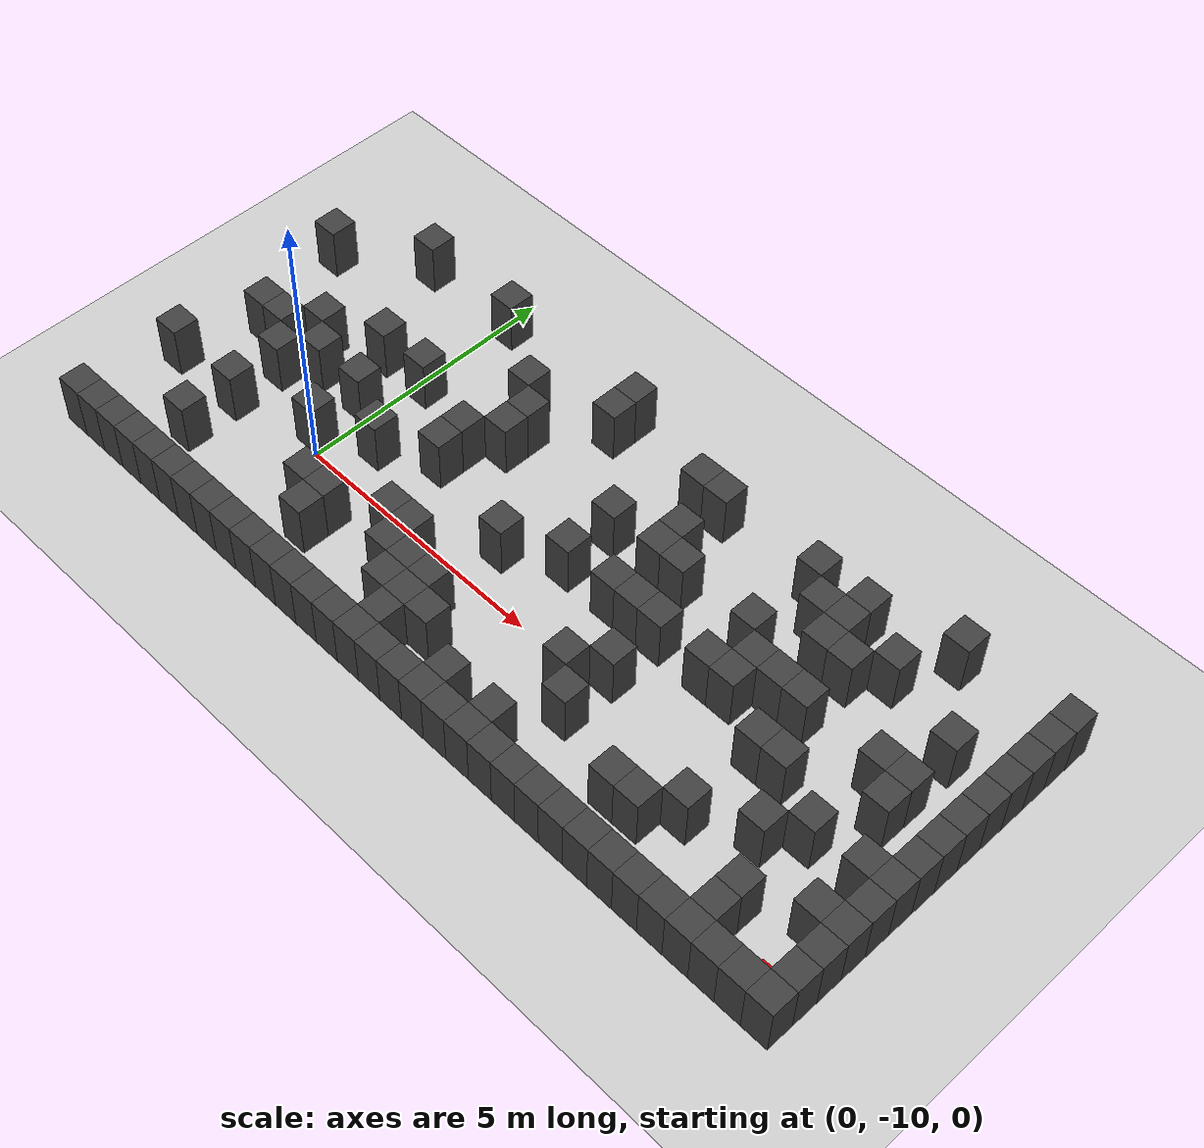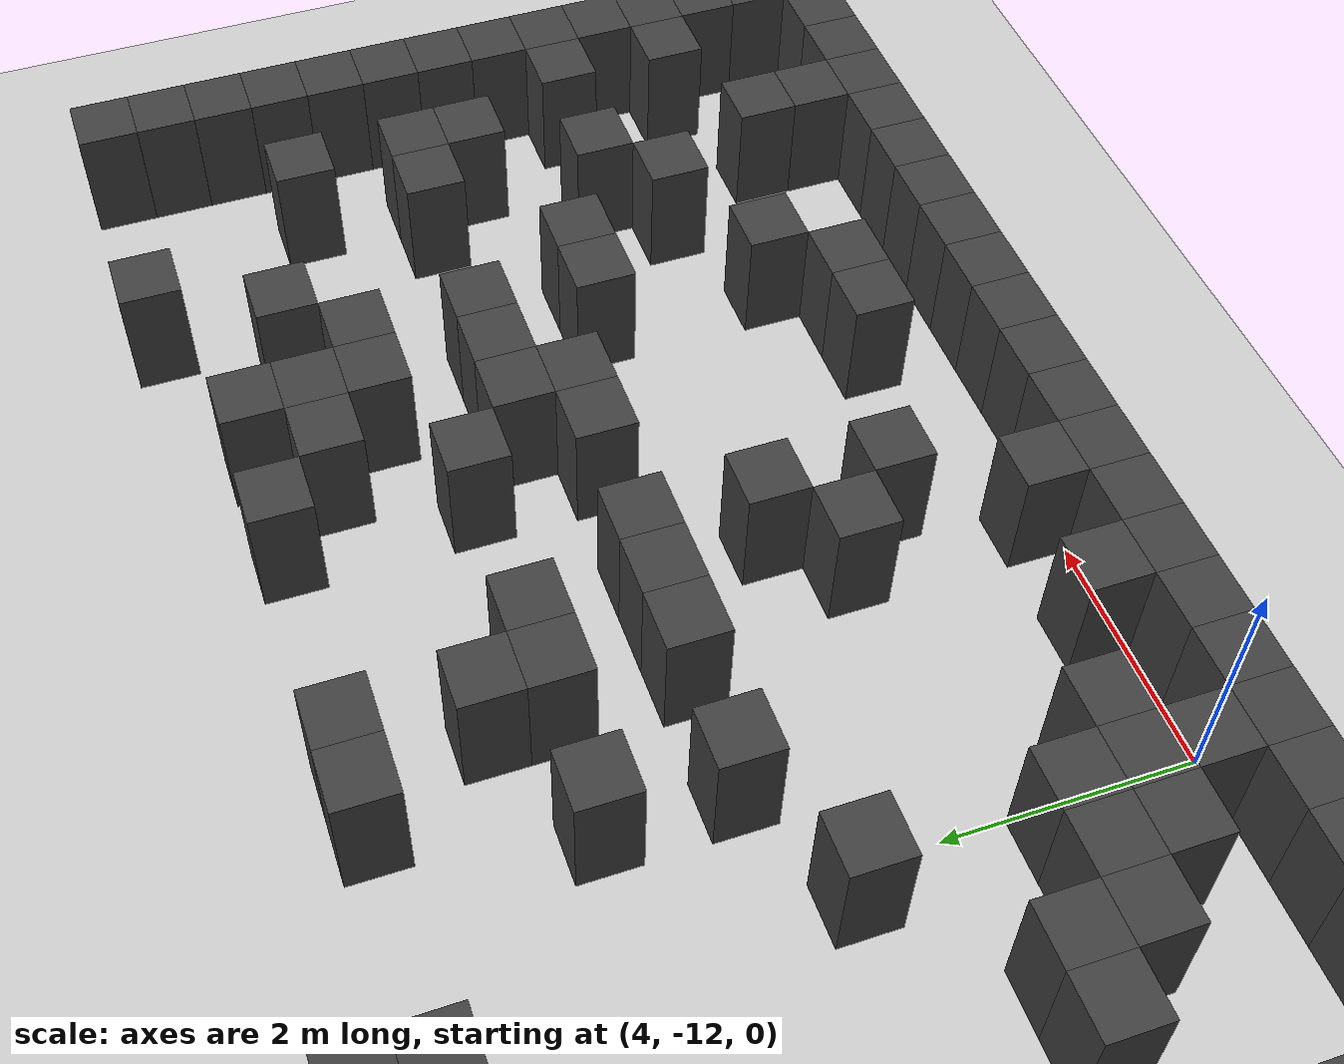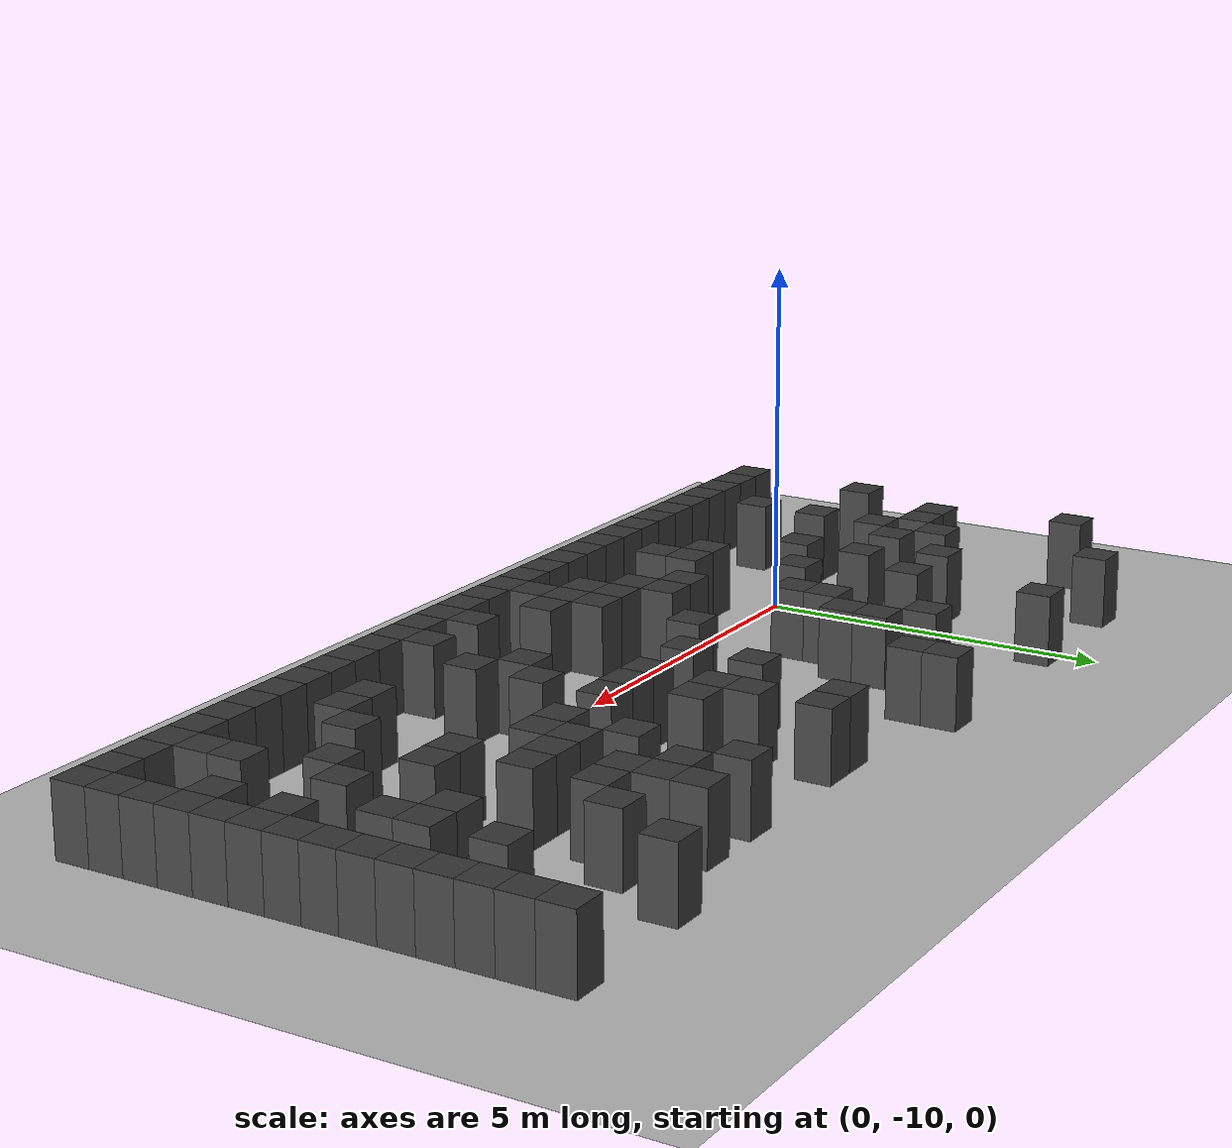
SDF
<sdf version="1.7">
 <world name="map_3891">
  <model name="ground_plane">
   <static>true</static>
   <link name="link">
    <collision name="collision">
     <geometry><plane><normal>0 0 1</normal><size>200 200</size></plane></geometry>
    </collision>
    <visual name="visual">
     <geometry><plane><normal>0 0 1</normal><size>200 200</size></plane></geometry>
     <material><ambient>0.8 0.8 0.8 1</ambient><diffuse>0.8 0.8 0.8 1</diffuse></material>
    </visual>
   </link>
  </model>
  <model name="maze_environment">
   <static>true</static>
   <link name="wall_440">
    <pose>-1.750 -5.750 0.500 0 0 0</pose>
    <collision name="col"><geometry><box><size>0.5 0.5 1.0</size></box></geometry></collision>
    <visual name="vis">
     <geometry><box><size>0.5 0.5 1.0</size></box></geometry>
     <material><ambient>0.15 0.15 0.15 1</ambient><diffuse>0.25 0.25 0.25 1</diffuse></material>
    </visual>
   </link>
   <link name="wall_441">
    <pose>0.250 -5.750 0.500 0 0 0</pose>
    <collision name="col"><geometry><box><size>0.5 0.5 1.0</size></box></geometry></collision>
    <visual name="vis">
     <geometry><box><size>0.5 0.5 1.0</size></box></geometry>
     <material><ambient>0.15 0.15 0.15 1</ambient><diffuse>0.25 0.25 0.25 1</diffuse></material>
    </visual>
   </link>
   <link name="wall_442">
    <pose>3.250 -5.750 0.500 0 0 0</pose>
    <collision name="col"><geometry><box><size>0.5 0.5 1.0</size></box></geometry></collision>
    <visual name="vis">
     <geometry><box><size>0.5 0.5 1.0</size></box></geometry>
     <material><ambient>0.15 0.15 0.15 1</ambient><diffuse>0.25 0.25 0.25 1</diffuse></material>
    </visual>
   </link>
   <link name="wall_443">
    <pose>10.250 -5.750 0.500 0 0 0</pose>
    <collision name="col"><geometry><box><size>0.5 0.5 1.0</size></box></geometry></collision>
    <visual name="vis">
     <geometry><box><size>0.5 0.5 1.0</size></box></geometry>
     <material><ambient>0.15 0.15 0.15 1</ambient><diffuse>0.25 0.25 0.25 1</diffuse></material>
    </visual>
   </link>
   <link name="wall_444">
    <pose>12.250 -5.750 0.500 0 0 0</pose>
    <collision name="col"><geometry><box><size>0.5 0.5 1.0</size></box></geometry></collision>
    <visual name="vis">
     <geometry><box><size>0.5 0.5 1.0</size></box></geometry>
     <material><ambient>0.15 0.15 0.15 1</ambient><diffuse>0.25 0.25 0.25 1</diffuse></material>
    </visual>
   </link>
   <link name="wall_448">
    <pose>3.250 -6.250 0.500 0 0 0</pose>
    <collision name="col"><geometry><box><size>0.5 0.5 1.0</size></box></geometry></collision>
    <visual name="vis">
     <geometry><box><size>0.5 0.5 1.0</size></box></geometry>
     <material><ambient>0.15 0.15 0.15 1</ambient><diffuse>0.25 0.25 0.25 1</diffuse></material>
    </visual>
   </link>
   <link name="wall_449">
    <pose>5.250 -6.250 0.500 0 0 0</pose>
    <collision name="col"><geometry><box><size>0.5 0.5 1.0</size></box></geometry></collision>
    <visual name="vis">
     <geometry><box><size>0.5 0.5 1.0</size></box></geometry>
     <material><ambient>0.15 0.15 0.15 1</ambient><diffuse>0.25 0.25 0.25 1</diffuse></material>
    </visual>
   </link>
   <link name="wall_450">
    <pose>5.750 -6.250 0.500 0 0 0</pose>
    <collision name="col"><geometry><box><size>0.5 0.5 1.0</size></box></geometry></collision>
    <visual name="vis">
     <geometry><box><size>0.5 0.5 1.0</size></box></geometry>
     <material><ambient>0.15 0.15 0.15 1</ambient><diffuse>0.25 0.25 0.25 1</diffuse></material>
    </visual>
   </link>
   <link name="wall_451">
    <pose>7.750 -6.250 0.500 0 0 0</pose>
    <collision name="col"><geometry><box><size>0.5 0.5 1.0</size></box></geometry></collision>
    <visual name="vis">
     <geometry><box><size>0.5 0.5 1.0</size></box></geometry>
     <material><ambient>0.15 0.15 0.15 1</ambient><diffuse>0.25 0.25 0.25 1</diffuse></material>
    </visual>
   </link>
   <link name="wall_452">
    <pose>8.750 -6.250 0.500 0 0 0</pose>
    <collision name="col"><geometry><box><size>0.5 0.5 1.0</size></box></geometry></collision>
    <visual name="vis">
     <geometry><box><size>0.5 0.5 1.0</size></box></geometry>
     <material><ambient>0.15 0.15 0.15 1</ambient><diffuse>0.25 0.25 0.25 1</diffuse></material>
    </visual>
   </link>
   <link name="wall_453">
    <pose>12.250 -6.250 0.500 0 0 0</pose>
    <collision name="col"><geometry><box><size>0.5 0.5 1.0</size></box></geometry></collision>
    <visual name="vis">
     <geometry><box><size>0.5 0.5 1.0</size></box></geometry>
     <material><ambient>0.15 0.15 0.15 1</ambient><diffuse>0.25 0.25 0.25 1</diffuse></material>
    </visual>
   </link>
   <link name="wall_457">
    <pose>-3.250 -6.750 0.500 0 0 0</pose>
    <collision name="col"><geometry><box><size>0.5 0.5 1.0</size></box></geometry></collision>
    <visual name="vis">
     <geometry><box><size>0.5 0.5 1.0</size></box></geometry>
     <material><ambient>0.15 0.15 0.15 1</ambient><diffuse>0.25 0.25 0.25 1</diffuse></material>
    </visual>
   </link>
   <link name="wall_458">
    <pose>1.750 -6.750 0.500 0 0 0</pose>
    <collision name="col"><geometry><box><size>0.5 0.5 1.0</size></box></geometry></collision>
    <visual name="vis">
     <geometry><box><size>0.5 0.5 1.0</size></box></geometry>
     <material><ambient>0.15 0.15 0.15 1</ambient><diffuse>0.25 0.25 0.25 1</diffuse></material>
    </visual>
   </link>
   <link name="wall_459">
    <pose>8.250 -6.750 0.500 0 0 0</pose>
    <collision name="col"><geometry><box><size>0.5 0.5 1.0</size></box></geometry></collision>
    <visual name="vis">
     <geometry><box><size>0.5 0.5 1.0</size></box></geometry>
     <material><ambient>0.15 0.15 0.15 1</ambient><diffuse>0.25 0.25 0.25 1</diffuse></material>
    </visual>
   </link>
   <link name="wall_460">
    <pose>8.750 -6.750 0.500 0 0 0</pose>
    <collision name="col"><geometry><box><size>0.5 0.5 1.0</size></box></geometry></collision>
    <visual name="vis">
     <geometry><box><size>0.5 0.5 1.0</size></box></geometry>
     <material><ambient>0.15 0.15 0.15 1</ambient><diffuse>0.25 0.25 0.25 1</diffuse></material>
    </visual>
   </link>
   <link name="wall_461">
    <pose>9.750 -6.750 0.500 0 0 0</pose>
    <collision name="col"><geometry><box><size>0.5 0.5 1.0</size></box></geometry></collision>
    <visual name="vis">
     <geometry><box><size>0.5 0.5 1.0</size></box></geometry>
     <material><ambient>0.15 0.15 0.15 1</ambient><diffuse>0.25 0.25 0.25 1</diffuse></material>
    </visual>
   </link>
   <link name="wall_462">
    <pose>12.250 -6.750 0.500 0 0 0</pose>
    <collision name="col"><geometry><box><size>0.5 0.5 1.0</size></box></geometry></collision>
    <visual name="vis">
     <geometry><box><size>0.5 0.5 1.0</size></box></geometry>
     <material><ambient>0.15 0.15 0.15 1</ambient><diffuse>0.25 0.25 0.25 1</diffuse></material>
    </visual>
   </link>
   <link name="wall_468">
    <pose>2.250 -7.250 0.500 0 0 0</pose>
    <collision name="col"><geometry><box><size>0.5 0.5 1.0</size></box></geometry></collision>
    <visual name="vis">
     <geometry><box><size>0.5 0.5 1.0</size></box></geometry>
     <material><ambient>0.15 0.15 0.15 1</ambient><diffuse>0.25 0.25 0.25 1</diffuse></material>
    </visual>
   </link>
   <link name="wall_469">
    <pose>5.750 -7.250 0.500 0 0 0</pose>
    <collision name="col"><geometry><box><size>0.5 0.5 1.0</size></box></geometry></collision>
    <visual name="vis">
     <geometry><box><size>0.5 0.5 1.0</size></box></geometry>
     <material><ambient>0.15 0.15 0.15 1</ambient><diffuse>0.25 0.25 0.25 1</diffuse></material>
    </visual>
   </link>
   <link name="wall_470">
    <pose>8.750 -7.250 0.500 0 0 0</pose>
    <collision name="col"><geometry><box><size>0.5 0.5 1.0</size></box></geometry></collision>
    <visual name="vis">
     <geometry><box><size>0.5 0.5 1.0</size></box></geometry>
     <material><ambient>0.15 0.15 0.15 1</ambient><diffuse>0.25 0.25 0.25 1</diffuse></material>
    </visual>
   </link>
   <link name="wall_471">
    <pose>9.250 -7.250 0.500 0 0 0</pose>
    <collision name="col"><geometry><box><size>0.5 0.5 1.0</size></box></geometry></collision>
    <visual name="vis">
     <geometry><box><size>0.5 0.5 1.0</size></box></geometry>
     <material><ambient>0.15 0.15 0.15 1</ambient><diffuse>0.25 0.25 0.25 1</diffuse></material>
    </visual>
   </link>
   <link name="wall_472">
    <pose>11.250 -7.250 0.500 0 0 0</pose>
    <collision name="col"><geometry><box><size>0.5 0.5 1.0</size></box></geometry></collision>
    <visual name="vis">
     <geometry><box><size>0.5 0.5 1.0</size></box></geometry>
     <material><ambient>0.15 0.15 0.15 1</ambient><diffuse>0.25 0.25 0.25 1</diffuse></material>
    </visual>
   </link>
   <link name="wall_473">
    <pose>12.250 -7.250 0.500 0 0 0</pose>
    <collision name="col"><geometry><box><size>0.5 0.5 1.0</size></box></geometry></collision>
    <visual name="vis">
     <geometry><box><size>0.5 0.5 1.0</size></box></geometry>
     <material><ambient>0.15 0.15 0.15 1</ambient><diffuse>0.25 0.25 0.25 1</diffuse></material>
    </visual>
   </link>
   <link name="wall_477">
    <pose>-0.750 -7.750 0.500 0 0 0</pose>
    <collision name="col"><geometry><box><size>0.5 0.5 1.0</size></box></geometry></collision>
    <visual name="vis">
     <geometry><box><size>0.5 0.5 1.0</size></box></geometry>
     <material><ambient>0.15 0.15 0.15 1</ambient><diffuse>0.25 0.25 0.25 1</diffuse></material>
    </visual>
   </link>
   <link name="wall_478">
    <pose>0.250 -7.750 0.500 0 0 0</pose>
    <collision name="col"><geometry><box><size>0.5 0.5 1.0</size></box></geometry></collision>
    <visual name="vis">
     <geometry><box><size>0.5 0.5 1.0</size></box></geometry>
     <material><ambient>0.15 0.15 0.15 1</ambient><diffuse>0.25 0.25 0.25 1</diffuse></material>
    </visual>
   </link>
   <link name="wall_479">
    <pose>2.250 -7.750 0.500 0 0 0</pose>
    <collision name="col"><geometry><box><size>0.5 0.5 1.0</size></box></geometry></collision>
    <visual name="vis">
     <geometry><box><size>0.5 0.5 1.0</size></box></geometry>
     <material><ambient>0.15 0.15 0.15 1</ambient><diffuse>0.25 0.25 0.25 1</diffuse></material>
    </visual>
   </link>
   <link name="wall_480">
    <pose>4.750 -7.750 0.500 0 0 0</pose>
    <collision name="col"><geometry><box><size>0.5 0.5 1.0</size></box></geometry></collision>
    <visual name="vis">
     <geometry><box><size>0.5 0.5 1.0</size></box></geometry>
     <material><ambient>0.15 0.15 0.15 1</ambient><diffuse>0.25 0.25 0.25 1</diffuse></material>
    </visual>
   </link>
   <link name="wall_481">
    <pose>5.750 -7.750 0.500 0 0 0</pose>
    <collision name="col"><geometry><box><size>0.5 0.5 1.0</size></box></geometry></collision>
    <visual name="vis">
     <geometry><box><size>0.5 0.5 1.0</size></box></geometry>
     <material><ambient>0.15 0.15 0.15 1</ambient><diffuse>0.25 0.25 0.25 1</diffuse></material>
    </visual>
   </link>
   <link name="wall_482">
    <pose>6.250 -7.750 0.500 0 0 0</pose>
    <collision name="col"><geometry><box><size>0.5 0.5 1.0</size></box></geometry></collision>
    <visual name="vis">
     <geometry><box><size>0.5 0.5 1.0</size></box></geometry>
     <material><ambient>0.15 0.15 0.15 1</ambient><diffuse>0.25 0.25 0.25 1</diffuse></material>
    </visual>
   </link>
   <link name="wall_483">
    <pose>7.750 -7.750 0.500 0 0 0</pose>
    <collision name="col"><geometry><box><size>0.5 0.5 1.0</size></box></geometry></collision>
    <visual name="vis">
     <geometry><box><size>0.5 0.5 1.0</size></box></geometry>
     <material><ambient>0.15 0.15 0.15 1</ambient><diffuse>0.25 0.25 0.25 1</diffuse></material>
    </visual>
   </link>
   <link name="wall_484">
    <pose>12.250 -7.750 0.500 0 0 0</pose>
    <collision name="col"><geometry><box><size>0.5 0.5 1.0</size></box></geometry></collision>
    <visual name="vis">
     <geometry><box><size>0.5 0.5 1.0</size></box></geometry>
     <material><ambient>0.15 0.15 0.15 1</ambient><diffuse>0.25 0.25 0.25 1</diffuse></material>
    </visual>
   </link>
   <link name="wall_488">
    <pose>-1.750 -8.250 0.500 0 0 0</pose>
    <collision name="col"><geometry><box><size>0.5 0.5 1.0</size></box></geometry></collision>
    <visual name="vis">
     <geometry><box><size>0.5 0.5 1.0</size></box></geometry>
     <material><ambient>0.15 0.15 0.15 1</ambient><diffuse>0.25 0.25 0.25 1</diffuse></material>
    </visual>
   </link>
   <link name="wall_489">
    <pose>1.750 -8.250 0.500 0 0 0</pose>
    <collision name="col"><geometry><box><size>0.5 0.5 1.0</size></box></geometry></collision>
    <visual name="vis">
     <geometry><box><size>0.5 0.5 1.0</size></box></geometry>
     <material><ambient>0.15 0.15 0.15 1</ambient><diffuse>0.25 0.25 0.25 1</diffuse></material>
    </visual>
   </link>
   <link name="wall_490">
    <pose>8.250 -8.250 0.500 0 0 0</pose>
    <collision name="col"><geometry><box><size>0.5 0.5 1.0</size></box></geometry></collision>
    <visual name="vis">
     <geometry><box><size>0.5 0.5 1.0</size></box></geometry>
     <material><ambient>0.15 0.15 0.15 1</ambient><diffuse>0.25 0.25 0.25 1</diffuse></material>
    </visual>
   </link>
   <link name="wall_491">
    <pose>8.750 -8.250 0.500 0 0 0</pose>
    <collision name="col"><geometry><box><size>0.5 0.5 1.0</size></box></geometry></collision>
    <visual name="vis">
     <geometry><box><size>0.5 0.5 1.0</size></box></geometry>
     <material><ambient>0.15 0.15 0.15 1</ambient><diffuse>0.25 0.25 0.25 1</diffuse></material>
    </visual>
   </link>
   <link name="wall_492">
    <pose>9.250 -8.250 0.500 0 0 0</pose>
    <collision name="col"><geometry><box><size>0.5 0.5 1.0</size></box></geometry></collision>
    <visual name="vis">
     <geometry><box><size>0.5 0.5 1.0</size></box></geometry>
     <material><ambient>0.15 0.15 0.15 1</ambient><diffuse>0.25 0.25 0.25 1</diffuse></material>
    </visual>
   </link>
   <link name="wall_493">
    <pose>10.750 -8.250 0.500 0 0 0</pose>
    <collision name="col"><geometry><box><size>0.5 0.5 1.0</size></box></geometry></collision>
    <visual name="vis">
     <geometry><box><size>0.5 0.5 1.0</size></box></geometry>
     <material><ambient>0.15 0.15 0.15 1</ambient><diffuse>0.25 0.25 0.25 1</diffuse></material>
    </visual>
   </link>
   <link name="wall_494">
    <pose>11.250 -8.250 0.500 0 0 0</pose>
    <collision name="col"><geometry><box><size>0.5 0.5 1.0</size></box></geometry></collision>
    <visual name="vis">
     <geometry><box><size>0.5 0.5 1.0</size></box></geometry>
     <material><ambient>0.15 0.15 0.15 1</ambient><diffuse>0.25 0.25 0.25 1</diffuse></material>
    </visual>
   </link>
   <link name="wall_495">
    <pose>12.250 -8.250 0.500 0 0 0</pose>
    <collision name="col"><geometry><box><size>0.5 0.5 1.0</size></box></geometry></collision>
    <visual name="vis">
     <geometry><box><size>0.5 0.5 1.0</size></box></geometry>
     <material><ambient>0.15 0.15 0.15 1</ambient><diffuse>0.25 0.25 0.25 1</diffuse></material>
    </visual>
   </link>
   <link name="wall_502">
    <pose>-2.750 -8.750 0.500 0 0 0</pose>
    <collision name="col"><geometry><box><size>0.5 0.5 1.0</size></box></geometry></collision>
    <visual name="vis">
     <geometry><box><size>0.5 0.5 1.0</size></box></geometry>
     <material><ambient>0.15 0.15 0.15 1</ambient><diffuse>0.25 0.25 0.25 1</diffuse></material>
    </visual>
   </link>
   <link name="wall_503">
    <pose>-2.250 -8.750 0.500 0 0 0</pose>
    <collision name="col"><geometry><box><size>0.5 0.5 1.0</size></box></geometry></collision>
    <visual name="vis">
     <geometry><box><size>0.5 0.5 1.0</size></box></geometry>
     <material><ambient>0.15 0.15 0.15 1</ambient><diffuse>0.25 0.25 0.25 1</diffuse></material>
    </visual>
   </link>
   <link name="wall_504">
    <pose>-1.250 -8.750 0.500 0 0 0</pose>
    <collision name="col"><geometry><box><size>0.5 0.5 1.0</size></box></geometry></collision>
    <visual name="vis">
     <geometry><box><size>0.5 0.5 1.0</size></box></geometry>
     <material><ambient>0.15 0.15 0.15 1</ambient><diffuse>0.25 0.25 0.25 1</diffuse></material>
    </visual>
   </link>
   <link name="wall_505">
    <pose>-0.250 -8.750 0.500 0 0 0</pose>
    <collision name="col"><geometry><box><size>0.5 0.5 1.0</size></box></geometry></collision>
    <visual name="vis">
     <geometry><box><size>0.5 0.5 1.0</size></box></geometry>
     <material><ambient>0.15 0.15 0.15 1</ambient><diffuse>0.25 0.25 0.25 1</diffuse></material>
    </visual>
   </link>
   <link name="wall_506">
    <pose>1.750 -8.750 0.500 0 0 0</pose>
    <collision name="col"><geometry><box><size>0.5 0.5 1.0</size></box></geometry></collision>
    <visual name="vis">
     <geometry><box><size>0.5 0.5 1.0</size></box></geometry>
     <material><ambient>0.15 0.15 0.15 1</ambient><diffuse>0.25 0.25 0.25 1</diffuse></material>
    </visual>
   </link>
   <link name="wall_507">
    <pose>4.750 -8.750 0.500 0 0 0</pose>
    <collision name="col"><geometry><box><size>0.5 0.5 1.0</size></box></geometry></collision>
    <visual name="vis">
     <geometry><box><size>0.5 0.5 1.0</size></box></geometry>
     <material><ambient>0.15 0.15 0.15 1</ambient><diffuse>0.25 0.25 0.25 1</diffuse></material>
    </visual>
   </link>
   <link name="wall_508">
    <pose>5.750 -8.750 0.500 0 0 0</pose>
    <collision name="col"><geometry><box><size>0.5 0.5 1.0</size></box></geometry></collision>
    <visual name="vis">
     <geometry><box><size>0.5 0.5 1.0</size></box></geometry>
     <material><ambient>0.15 0.15 0.15 1</ambient><diffuse>0.25 0.25 0.25 1</diffuse></material>
    </visual>
   </link>
   <link name="wall_509">
    <pose>6.250 -8.750 0.500 0 0 0</pose>
    <collision name="col"><geometry><box><size>0.5 0.5 1.0</size></box></geometry></collision>
    <visual name="vis">
     <geometry><box><size>0.5 0.5 1.0</size></box></geometry>
     <material><ambient>0.15 0.15 0.15 1</ambient><diffuse>0.25 0.25 0.25 1</diffuse></material>
    </visual>
   </link>
   <link name="wall_510">
    <pose>6.750 -8.750 0.500 0 0 0</pose>
    <collision name="col"><geometry><box><size>0.5 0.5 1.0</size></box></geometry></collision>
    <visual name="vis">
     <geometry><box><size>0.5 0.5 1.0</size></box></geometry>
     <material><ambient>0.15 0.15 0.15 1</ambient><diffuse>0.25 0.25 0.25 1</diffuse></material>
    </visual>
   </link>
   <link name="wall_511">
    <pose>7.750 -8.750 0.500 0 0 0</pose>
    <collision name="col"><geometry><box><size>0.5 0.5 1.0</size></box></geometry></collision>
    <visual name="vis">
     <geometry><box><size>0.5 0.5 1.0</size></box></geometry>
     <material><ambient>0.15 0.15 0.15 1</ambient><diffuse>0.25 0.25 0.25 1</diffuse></material>
    </visual>
   </link>
   <link name="wall_512">
    <pose>8.250 -8.750 0.500 0 0 0</pose>
    <collision name="col"><geometry><box><size>0.5 0.5 1.0</size></box></geometry></collision>
    <visual name="vis">
     <geometry><box><size>0.5 0.5 1.0</size></box></geometry>
     <material><ambient>0.15 0.15 0.15 1</ambient><diffuse>0.25 0.25 0.25 1</diffuse></material>
    </visual>
   </link>
   <link name="wall_513">
    <pose>11.250 -8.750 0.500 0 0 0</pose>
    <collision name="col"><geometry><box><size>0.5 0.5 1.0</size></box></geometry></collision>
    <visual name="vis">
     <geometry><box><size>0.5 0.5 1.0</size></box></geometry>
     <material><ambient>0.15 0.15 0.15 1</ambient><diffuse>0.25 0.25 0.25 1</diffuse></material>
    </visual>
   </link>
   <link name="wall_514">
    <pose>12.250 -8.750 0.500 0 0 0</pose>
    <collision name="col"><geometry><box><size>0.5 0.5 1.0</size></box></geometry></collision>
    <visual name="vis">
     <geometry><box><size>0.5 0.5 1.0</size></box></geometry>
     <material><ambient>0.15 0.15 0.15 1</ambient><diffuse>0.25 0.25 0.25 1</diffuse></material>
    </visual>
   </link>
   <link name="wall_521">
    <pose>-1.750 -9.250 0.500 0 0 0</pose>
    <collision name="col"><geometry><box><size>0.5 0.5 1.0</size></box></geometry></collision>
    <visual name="vis">
     <geometry><box><size>0.5 0.5 1.0</size></box></geometry>
     <material><ambient>0.15 0.15 0.15 1</ambient><diffuse>0.25 0.25 0.25 1</diffuse></material>
    </visual>
   </link>
   <link name="wall_522">
    <pose>0.750 -9.250 0.500 0 0 0</pose>
    <collision name="col"><geometry><box><size>0.5 0.5 1.0</size></box></geometry></collision>
    <visual name="vis">
     <geometry><box><size>0.5 0.5 1.0</size></box></geometry>
     <material><ambient>0.15 0.15 0.15 1</ambient><diffuse>0.25 0.25 0.25 1</diffuse></material>
    </visual>
   </link>
   <link name="wall_523">
    <pose>3.750 -9.250 0.500 0 0 0</pose>
    <collision name="col"><geometry><box><size>0.5 0.5 1.0</size></box></geometry></collision>
    <visual name="vis">
     <geometry><box><size>0.5 0.5 1.0</size></box></geometry>
     <material><ambient>0.15 0.15 0.15 1</ambient><diffuse>0.25 0.25 0.25 1</diffuse></material>
    </visual>
   </link>
   <link name="wall_524">
    <pose>9.250 -9.250 0.500 0 0 0</pose>
    <collision name="col"><geometry><box><size>0.5 0.5 1.0</size></box></geometry></collision>
    <visual name="vis">
     <geometry><box><size>0.5 0.5 1.0</size></box></geometry>
     <material><ambient>0.15 0.15 0.15 1</ambient><diffuse>0.25 0.25 0.25 1</diffuse></material>
    </visual>
   </link>
   <link name="wall_525">
    <pose>9.750 -9.250 0.500 0 0 0</pose>
    <collision name="col"><geometry><box><size>0.5 0.5 1.0</size></box></geometry></collision>
    <visual name="vis">
     <geometry><box><size>0.5 0.5 1.0</size></box></geometry>
     <material><ambient>0.15 0.15 0.15 1</ambient><diffuse>0.25 0.25 0.25 1</diffuse></material>
    </visual>
   </link>
   <link name="wall_526">
    <pose>12.250 -9.250 0.500 0 0 0</pose>
    <collision name="col"><geometry><box><size>0.5 0.5 1.0</size></box></geometry></collision>
    <visual name="vis">
     <geometry><box><size>0.5 0.5 1.0</size></box></geometry>
     <material><ambient>0.15 0.15 0.15 1</ambient><diffuse>0.25 0.25 0.25 1</diffuse></material>
    </visual>
   </link>
   <link name="wall_528">
    <pose>-0.250 -9.750 0.500 0 0 0</pose>
    <collision name="col"><geometry><box><size>0.5 0.5 1.0</size></box></geometry></collision>
    <visual name="vis">
     <geometry><box><size>0.5 0.5 1.0</size></box></geometry>
     <material><ambient>0.15 0.15 0.15 1</ambient><diffuse>0.25 0.25 0.25 1</diffuse></material>
    </visual>
   </link>
   <link name="wall_529">
    <pose>6.750 -9.750 0.500 0 0 0</pose>
    <collision name="col"><geometry><box><size>0.5 0.5 1.0</size></box></geometry></collision>
    <visual name="vis">
     <geometry><box><size>0.5 0.5 1.0</size></box></geometry>
     <material><ambient>0.15 0.15 0.15 1</ambient><diffuse>0.25 0.25 0.25 1</diffuse></material>
    </visual>
   </link>
   <link name="wall_530">
    <pose>10.750 -9.750 0.500 0 0 0</pose>
    <collision name="col"><geometry><box><size>0.5 0.5 1.0</size></box></geometry></collision>
    <visual name="vis">
     <geometry><box><size>0.5 0.5 1.0</size></box></geometry>
     <material><ambient>0.15 0.15 0.15 1</ambient><diffuse>0.25 0.25 0.25 1</diffuse></material>
    </visual>
   </link>
   <link name="wall_531">
    <pose>11.750 -9.750 0.500 0 0 0</pose>
    <collision name="col"><geometry><box><size>0.5 0.5 1.0</size></box></geometry></collision>
    <visual name="vis">
     <geometry><box><size>0.5 0.5 1.0</size></box></geometry>
     <material><ambient>0.15 0.15 0.15 1</ambient><diffuse>0.25 0.25 0.25 1</diffuse></material>
    </visual>
   </link>
   <link name="wall_532">
    <pose>12.250 -9.750 0.500 0 0 0</pose>
    <collision name="col"><geometry><box><size>0.5 0.5 1.0</size></box></geometry></collision>
    <visual name="vis">
     <geometry><box><size>0.5 0.5 1.0</size></box></geometry>
     <material><ambient>0.15 0.15 0.15 1</ambient><diffuse>0.25 0.25 0.25 1</diffuse></material>
    </visual>
   </link>
   <link name="wall_539">
    <pose>-3.250 -10.250 0.500 0 0 0</pose>
    <collision name="col"><geometry><box><size>0.5 0.5 1.0</size></box></geometry></collision>
    <visual name="vis">
     <geometry><box><size>0.5 0.5 1.0</size></box></geometry>
     <material><ambient>0.15 0.15 0.15 1</ambient><diffuse>0.25 0.25 0.25 1</diffuse></material>
    </visual>
   </link>
   <link name="wall_540">
    <pose>-1.750 -10.250 0.500 0 0 0</pose>
    <collision name="col"><geometry><box><size>0.5 0.5 1.0</size></box></geometry></collision>
    <visual name="vis">
     <geometry><box><size>0.5 0.5 1.0</size></box></geometry>
     <material><ambient>0.15 0.15 0.15 1</ambient><diffuse>0.25 0.25 0.25 1</diffuse></material>
    </visual>
   </link>
   <link name="wall_541">
    <pose>2.250 -10.250 0.500 0 0 0</pose>
    <collision name="col"><geometry><box><size>0.5 0.5 1.0</size></box></geometry></collision>
    <visual name="vis">
     <geometry><box><size>0.5 0.5 1.0</size></box></geometry>
     <material><ambient>0.15 0.15 0.15 1</ambient><diffuse>0.25 0.25 0.25 1</diffuse></material>
    </visual>
   </link>
   <link name="wall_542">
    <pose>2.750 -10.250 0.500 0 0 0</pose>
    <collision name="col"><geometry><box><size>0.5 0.5 1.0</size></box></geometry></collision>
    <visual name="vis">
     <geometry><box><size>0.5 0.5 1.0</size></box></geometry>
     <material><ambient>0.15 0.15 0.15 1</ambient><diffuse>0.25 0.25 0.25 1</diffuse></material>
    </visual>
   </link>
   <link name="wall_543">
    <pose>6.250 -10.250 0.500 0 0 0</pose>
    <collision name="col"><geometry><box><size>0.5 0.5 1.0</size></box></geometry></collision>
    <visual name="vis">
     <geometry><box><size>0.5 0.5 1.0</size></box></geometry>
     <material><ambient>0.15 0.15 0.15 1</ambient><diffuse>0.25 0.25 0.25 1</diffuse></material>
    </visual>
   </link>
   <link name="wall_544">
    <pose>10.250 -10.250 0.500 0 0 0</pose>
    <collision name="col"><geometry><box><size>0.5 0.5 1.0</size></box></geometry></collision>
    <visual name="vis">
     <geometry><box><size>0.5 0.5 1.0</size></box></geometry>
     <material><ambient>0.15 0.15 0.15 1</ambient><diffuse>0.25 0.25 0.25 1</diffuse></material>
    </visual>
   </link>
   <link name="wall_545">
    <pose>12.250 -10.250 0.500 0 0 0</pose>
    <collision name="col"><geometry><box><size>0.5 0.5 1.0</size></box></geometry></collision>
    <visual name="vis">
     <geometry><box><size>0.5 0.5 1.0</size></box></geometry>
     <material><ambient>0.15 0.15 0.15 1</ambient><diffuse>0.25 0.25 0.25 1</diffuse></material>
    </visual>
   </link>
   <link name="wall_550">
    <pose>0.750 -10.750 0.500 0 0 0</pose>
    <collision name="col"><geometry><box><size>0.5 0.5 1.0</size></box></geometry></collision>
    <visual name="vis">
     <geometry><box><size>0.5 0.5 1.0</size></box></geometry>
     <material><ambient>0.15 0.15 0.15 1</ambient><diffuse>0.25 0.25 0.25 1</diffuse></material>
    </visual>
   </link>
   <link name="wall_551">
    <pose>1.250 -10.750 0.500 0 0 0</pose>
    <collision name="col"><geometry><box><size>0.5 0.5 1.0</size></box></geometry></collision>
    <visual name="vis">
     <geometry><box><size>0.5 0.5 1.0</size></box></geometry>
     <material><ambient>0.15 0.15 0.15 1</ambient><diffuse>0.25 0.25 0.25 1</diffuse></material>
    </visual>
   </link>
   <link name="wall_552">
    <pose>2.750 -10.750 0.500 0 0 0</pose>
    <collision name="col"><geometry><box><size>0.5 0.5 1.0</size></box></geometry></collision>
    <visual name="vis">
     <geometry><box><size>0.5 0.5 1.0</size></box></geometry>
     <material><ambient>0.15 0.15 0.15 1</ambient><diffuse>0.25 0.25 0.25 1</diffuse></material>
    </visual>
   </link>
   <link name="wall_553">
    <pose>3.250 -10.750 0.500 0 0 0</pose>
    <collision name="col"><geometry><box><size>0.5 0.5 1.0</size></box></geometry></collision>
    <visual name="vis">
     <geometry><box><size>0.5 0.5 1.0</size></box></geometry>
     <material><ambient>0.15 0.15 0.15 1</ambient><diffuse>0.25 0.25 0.25 1</diffuse></material>
    </visual>
   </link>
   <link name="wall_554">
    <pose>3.750 -10.750 0.500 0 0 0</pose>
    <collision name="col"><geometry><box><size>0.5 0.5 1.0</size></box></geometry></collision>
    <visual name="vis">
     <geometry><box><size>0.5 0.5 1.0</size></box></geometry>
     <material><ambient>0.15 0.15 0.15 1</ambient><diffuse>0.25 0.25 0.25 1</diffuse></material>
    </visual>
   </link>
   <link name="wall_555">
    <pose>6.750 -10.750 0.500 0 0 0</pose>
    <collision name="col"><geometry><box><size>0.5 0.5 1.0</size></box></geometry></collision>
    <visual name="vis">
     <geometry><box><size>0.5 0.5 1.0</size></box></geometry>
     <material><ambient>0.15 0.15 0.15 1</ambient><diffuse>0.25 0.25 0.25 1</diffuse></material>
    </visual>
   </link>
   <link name="wall_556">
    <pose>9.250 -10.750 0.500 0 0 0</pose>
    <collision name="col"><geometry><box><size>0.5 0.5 1.0</size></box></geometry></collision>
    <visual name="vis">
     <geometry><box><size>0.5 0.5 1.0</size></box></geometry>
     <material><ambient>0.15 0.15 0.15 1</ambient><diffuse>0.25 0.25 0.25 1</diffuse></material>
    </visual>
   </link>
   <link name="wall_557">
    <pose>11.750 -10.750 0.500 0 0 0</pose>
    <collision name="col"><geometry><box><size>0.5 0.5 1.0</size></box></geometry></collision>
    <visual name="vis">
     <geometry><box><size>0.5 0.5 1.0</size></box></geometry>
     <material><ambient>0.15 0.15 0.15 1</ambient><diffuse>0.25 0.25 0.25 1</diffuse></material>
    </visual>
   </link>
   <link name="wall_558">
    <pose>12.250 -10.750 0.500 0 0 0</pose>
    <collision name="col"><geometry><box><size>0.5 0.5 1.0</size></box></geometry></collision>
    <visual name="vis">
     <geometry><box><size>0.5 0.5 1.0</size></box></geometry>
     <material><ambient>0.15 0.15 0.15 1</ambient><diffuse>0.25 0.25 0.25 1</diffuse></material>
    </visual>
   </link>
   <link name="wall_566">
    <pose>-1.750 -11.250 0.500 0 0 0</pose>
    <collision name="col"><geometry><box><size>0.5 0.5 1.0</size></box></geometry></collision>
    <visual name="vis">
     <geometry><box><size>0.5 0.5 1.0</size></box></geometry>
     <material><ambient>0.15 0.15 0.15 1</ambient><diffuse>0.25 0.25 0.25 1</diffuse></material>
    </visual>
   </link>
   <link name="wall_567">
    <pose>1.250 -11.250 0.500 0 0 0</pose>
    <collision name="col"><geometry><box><size>0.5 0.5 1.0</size></box></geometry></collision>
    <visual name="vis">
     <geometry><box><size>0.5 0.5 1.0</size></box></geometry>
     <material><ambient>0.15 0.15 0.15 1</ambient><diffuse>0.25 0.25 0.25 1</diffuse></material>
    </visual>
   </link>
   <link name="wall_568">
    <pose>3.250 -11.250 0.500 0 0 0</pose>
    <collision name="col"><geometry><box><size>0.5 0.5 1.0</size></box></geometry></collision>
    <visual name="vis">
     <geometry><box><size>0.5 0.5 1.0</size></box></geometry>
     <material><ambient>0.15 0.15 0.15 1</ambient><diffuse>0.25 0.25 0.25 1</diffuse></material>
    </visual>
   </link>
   <link name="wall_569">
    <pose>3.750 -11.250 0.500 0 0 0</pose>
    <collision name="col"><geometry><box><size>0.5 0.5 1.0</size></box></geometry></collision>
    <visual name="vis">
     <geometry><box><size>0.5 0.5 1.0</size></box></geometry>
     <material><ambient>0.15 0.15 0.15 1</ambient><diffuse>0.25 0.25 0.25 1</diffuse></material>
    </visual>
   </link>
   <link name="wall_570">
    <pose>4.250 -11.250 0.500 0 0 0</pose>
    <collision name="col"><geometry><box><size>0.5 0.5 1.0</size></box></geometry></collision>
    <visual name="vis">
     <geometry><box><size>0.5 0.5 1.0</size></box></geometry>
     <material><ambient>0.15 0.15 0.15 1</ambient><diffuse>0.25 0.25 0.25 1</diffuse></material>
    </visual>
   </link>
   <link name="wall_571">
    <pose>8.250 -11.250 0.500 0 0 0</pose>
    <collision name="col"><geometry><box><size>0.5 0.5 1.0</size></box></geometry></collision>
    <visual name="vis">
     <geometry><box><size>0.5 0.5 1.0</size></box></geometry>
     <material><ambient>0.15 0.15 0.15 1</ambient><diffuse>0.25 0.25 0.25 1</diffuse></material>
    </visual>
   </link>
   <link name="wall_572">
    <pose>8.750 -11.250 0.500 0 0 0</pose>
    <collision name="col"><geometry><box><size>0.5 0.5 1.0</size></box></geometry></collision>
    <visual name="vis">
     <geometry><box><size>0.5 0.5 1.0</size></box></geometry>
     <material><ambient>0.15 0.15 0.15 1</ambient><diffuse>0.25 0.25 0.25 1</diffuse></material>
    </visual>
   </link>
   <link name="wall_573">
    <pose>10.750 -11.250 0.500 0 0 0</pose>
    <collision name="col"><geometry><box><size>0.5 0.5 1.0</size></box></geometry></collision>
    <visual name="vis">
     <geometry><box><size>0.5 0.5 1.0</size></box></geometry>
     <material><ambient>0.15 0.15 0.15 1</ambient><diffuse>0.25 0.25 0.25 1</diffuse></material>
    </visual>
   </link>
   <link name="wall_574">
    <pose>12.250 -11.250 0.500 0 0 0</pose>
    <collision name="col"><geometry><box><size>0.5 0.5 1.0</size></box></geometry></collision>
    <visual name="vis">
     <geometry><box><size>0.5 0.5 1.0</size></box></geometry>
     <material><ambient>0.15 0.15 0.15 1</ambient><diffuse>0.25 0.25 0.25 1</diffuse></material>
    </visual>
   </link>
   <link name="wall_576">
    <pose>3.750 -11.750 0.500 0 0 0</pose>
    <collision name="col"><geometry><box><size>0.5 0.5 1.0</size></box></geometry></collision>
    <visual name="vis">
     <geometry><box><size>0.5 0.5 1.0</size></box></geometry>
     <material><ambient>0.15 0.15 0.15 1</ambient><diffuse>0.25 0.25 0.25 1</diffuse></material>
    </visual>
   </link>
   <link name="wall_577">
    <pose>5.250 -11.750 0.500 0 0 0</pose>
    <collision name="col"><geometry><box><size>0.5 0.5 1.0</size></box></geometry></collision>
    <visual name="vis">
     <geometry><box><size>0.5 0.5 1.0</size></box></geometry>
     <material><ambient>0.15 0.15 0.15 1</ambient><diffuse>0.25 0.25 0.25 1</diffuse></material>
    </visual>
   </link>
   <link name="wall_578">
    <pose>6.250 -11.750 0.500 0 0 0</pose>
    <collision name="col"><geometry><box><size>0.5 0.5 1.0</size></box></geometry></collision>
    <visual name="vis">
     <geometry><box><size>0.5 0.5 1.0</size></box></geometry>
     <material><ambient>0.15 0.15 0.15 1</ambient><diffuse>0.25 0.25 0.25 1</diffuse></material>
    </visual>
   </link>
   <link name="wall_579">
    <pose>10.750 -11.750 0.500 0 0 0</pose>
    <collision name="col"><geometry><box><size>0.5 0.5 1.0</size></box></geometry></collision>
    <visual name="vis">
     <geometry><box><size>0.5 0.5 1.0</size></box></geometry>
     <material><ambient>0.15 0.15 0.15 1</ambient><diffuse>0.25 0.25 0.25 1</diffuse></material>
    </visual>
   </link>
   <link name="wall_580">
    <pose>12.250 -11.750 0.500 0 0 0</pose>
    <collision name="col"><geometry><box><size>0.5 0.5 1.0</size></box></geometry></collision>
    <visual name="vis">
     <geometry><box><size>0.5 0.5 1.0</size></box></geometry>
     <material><ambient>0.15 0.15 0.15 1</ambient><diffuse>0.25 0.25 0.25 1</diffuse></material>
    </visual>
   </link>
   <link name="wall_599">
    <pose>-3.250 -12.250 0.500 0 0 0</pose>
    <collision name="col"><geometry><box><size>0.5 0.5 1.0</size></box></geometry></collision>
    <visual name="vis">
     <geometry><box><size>0.5 0.5 1.0</size></box></geometry>
     <material><ambient>0.15 0.15 0.15 1</ambient><diffuse>0.25 0.25 0.25 1</diffuse></material>
    </visual>
   </link>
   <link name="wall_600">
    <pose>-2.750 -12.250 0.500 0 0 0</pose>
    <collision name="col"><geometry><box><size>0.5 0.5 1.0</size></box></geometry></collision>
    <visual name="vis">
     <geometry><box><size>0.5 0.5 1.0</size></box></geometry>
     <material><ambient>0.15 0.15 0.15 1</ambient><diffuse>0.25 0.25 0.25 1</diffuse></material>
    </visual>
   </link>
   <link name="wall_601">
    <pose>-2.250 -12.250 0.500 0 0 0</pose>
    <collision name="col"><geometry><box><size>0.5 0.5 1.0</size></box></geometry></collision>
    <visual name="vis">
     <geometry><box><size>0.5 0.5 1.0</size></box></geometry>
     <material><ambient>0.15 0.15 0.15 1</ambient><diffuse>0.25 0.25 0.25 1</diffuse></material>
    </visual>
   </link>
   <link name="wall_602">
    <pose>-1.750 -12.250 0.500 0 0 0</pose>
    <collision name="col"><geometry><box><size>0.5 0.5 1.0</size></box></geometry></collision>
    <visual name="vis">
     <geometry><box><size>0.5 0.5 1.0</size></box></geometry>
     <material><ambient>0.15 0.15 0.15 1</ambient><diffuse>0.25 0.25 0.25 1</diffuse></material>
    </visual>
   </link>
   <link name="wall_603">
    <pose>-1.250 -12.250 0.500 0 0 0</pose>
    <collision name="col"><geometry><box><size>0.5 0.5 1.0</size></box></geometry></collision>
    <visual name="vis">
     <geometry><box><size>0.5 0.5 1.0</size></box></geometry>
     <material><ambient>0.15 0.15 0.15 1</ambient><diffuse>0.25 0.25 0.25 1</diffuse></material>
    </visual>
   </link>
   <link name="wall_604">
    <pose>-0.750 -12.250 0.500 0 0 0</pose>
    <collision name="col"><geometry><box><size>0.5 0.5 1.0</size></box></geometry></collision>
    <visual name="vis">
     <geometry><box><size>0.5 0.5 1.0</size></box></geometry>
     <material><ambient>0.15 0.15 0.15 1</ambient><diffuse>0.25 0.25 0.25 1</diffuse></material>
    </visual>
   </link>
   <link name="wall_605">
    <pose>-0.250 -12.250 0.500 0 0 0</pose>
    <collision name="col"><geometry><box><size>0.5 0.5 1.0</size></box></geometry></collision>
    <visual name="vis">
     <geometry><box><size>0.5 0.5 1.0</size></box></geometry>
     <material><ambient>0.15 0.15 0.15 1</ambient><diffuse>0.25 0.25 0.25 1</diffuse></material>
    </visual>
   </link>
   <link name="wall_606">
    <pose>0.250 -12.250 0.500 0 0 0</pose>
    <collision name="col"><geometry><box><size>0.5 0.5 1.0</size></box></geometry></collision>
    <visual name="vis">
     <geometry><box><size>0.5 0.5 1.0</size></box></geometry>
     <material><ambient>0.15 0.15 0.15 1</ambient><diffuse>0.25 0.25 0.25 1</diffuse></material>
    </visual>
   </link>
   <link name="wall_607">
    <pose>0.750 -12.250 0.500 0 0 0</pose>
    <collision name="col"><geometry><box><size>0.5 0.5 1.0</size></box></geometry></collision>
    <visual name="vis">
     <geometry><box><size>0.5 0.5 1.0</size></box></geometry>
     <material><ambient>0.15 0.15 0.15 1</ambient><diffuse>0.25 0.25 0.25 1</diffuse></material>
    </visual>
   </link>
   <link name="wall_608">
    <pose>1.250 -12.250 0.500 0 0 0</pose>
    <collision name="col"><geometry><box><size>0.5 0.5 1.0</size></box></geometry></collision>
    <visual name="vis">
     <geometry><box><size>0.5 0.5 1.0</size></box></geometry>
     <material><ambient>0.15 0.15 0.15 1</ambient><diffuse>0.25 0.25 0.25 1</diffuse></material>
    </visual>
   </link>
   <link name="wall_609">
    <pose>1.750 -12.250 0.500 0 0 0</pose>
    <collision name="col"><geometry><box><size>0.5 0.5 1.0</size></box></geometry></collision>
    <visual name="vis">
     <geometry><box><size>0.5 0.5 1.0</size></box></geometry>
     <material><ambient>0.15 0.15 0.15 1</ambient><diffuse>0.25 0.25 0.25 1</diffuse></material>
    </visual>
   </link>
   <link name="wall_610">
    <pose>2.250 -12.250 0.500 0 0 0</pose>
    <collision name="col"><geometry><box><size>0.5 0.5 1.0</size></box></geometry></collision>
    <visual name="vis">
     <geometry><box><size>0.5 0.5 1.0</size></box></geometry>
     <material><ambient>0.15 0.15 0.15 1</ambient><diffuse>0.25 0.25 0.25 1</diffuse></material>
    </visual>
   </link>
   <link name="wall_611">
    <pose>2.750 -12.250 0.500 0 0 0</pose>
    <collision name="col"><geometry><box><size>0.5 0.5 1.0</size></box></geometry></collision>
    <visual name="vis">
     <geometry><box><size>0.5 0.5 1.0</size></box></geometry>
     <material><ambient>0.15 0.15 0.15 1</ambient><diffuse>0.25 0.25 0.25 1</diffuse></material>
    </visual>
   </link>
   <link name="wall_612">
    <pose>3.250 -12.250 0.500 0 0 0</pose>
    <collision name="col"><geometry><box><size>0.5 0.5 1.0</size></box></geometry></collision>
    <visual name="vis">
     <geometry><box><size>0.5 0.5 1.0</size></box></geometry>
     <material><ambient>0.15 0.15 0.15 1</ambient><diffuse>0.25 0.25 0.25 1</diffuse></material>
    </visual>
   </link>
   <link name="wall_613">
    <pose>3.750 -12.250 0.500 0 0 0</pose>
    <collision name="col"><geometry><box><size>0.5 0.5 1.0</size></box></geometry></collision>
    <visual name="vis">
     <geometry><box><size>0.5 0.5 1.0</size></box></geometry>
     <material><ambient>0.15 0.15 0.15 1</ambient><diffuse>0.25 0.25 0.25 1</diffuse></material>
    </visual>
   </link>
   <link name="wall_614">
    <pose>4.250 -12.250 0.500 0 0 0</pose>
    <collision name="col"><geometry><box><size>0.5 0.5 1.0</size></box></geometry></collision>
    <visual name="vis">
     <geometry><box><size>0.5 0.5 1.0</size></box></geometry>
     <material><ambient>0.15 0.15 0.15 1</ambient><diffuse>0.25 0.25 0.25 1</diffuse></material>
    </visual>
   </link>
   <link name="wall_615">
    <pose>4.750 -12.250 0.500 0 0 0</pose>
    <collision name="col"><geometry><box><size>0.5 0.5 1.0</size></box></geometry></collision>
    <visual name="vis">
     <geometry><box><size>0.5 0.5 1.0</size></box></geometry>
     <material><ambient>0.15 0.15 0.15 1</ambient><diffuse>0.25 0.25 0.25 1</diffuse></material>
    </visual>
   </link>
   <link name="wall_616">
    <pose>5.250 -12.250 0.500 0 0 0</pose>
    <collision name="col"><geometry><box><size>0.5 0.5 1.0</size></box></geometry></collision>
    <visual name="vis">
     <geometry><box><size>0.5 0.5 1.0</size></box></geometry>
     <material><ambient>0.15 0.15 0.15 1</ambient><diffuse>0.25 0.25 0.25 1</diffuse></material>
    </visual>
   </link>
   <link name="wall_617">
    <pose>5.750 -12.250 0.500 0 0 0</pose>
    <collision name="col"><geometry><box><size>0.5 0.5 1.0</size></box></geometry></collision>
    <visual name="vis">
     <geometry><box><size>0.5 0.5 1.0</size></box></geometry>
     <material><ambient>0.15 0.15 0.15 1</ambient><diffuse>0.25 0.25 0.25 1</diffuse></material>
    </visual>
   </link>
   <link name="wall_618">
    <pose>6.250 -12.250 0.500 0 0 0</pose>
    <collision name="col"><geometry><box><size>0.5 0.5 1.0</size></box></geometry></collision>
    <visual name="vis">
     <geometry><box><size>0.5 0.5 1.0</size></box></geometry>
     <material><ambient>0.15 0.15 0.15 1</ambient><diffuse>0.25 0.25 0.25 1</diffuse></material>
    </visual>
   </link>
   <link name="wall_619">
    <pose>6.750 -12.250 0.500 0 0 0</pose>
    <collision name="col"><geometry><box><size>0.5 0.5 1.0</size></box></geometry></collision>
    <visual name="vis">
     <geometry><box><size>0.5 0.5 1.0</size></box></geometry>
     <material><ambient>0.15 0.15 0.15 1</ambient><diffuse>0.25 0.25 0.25 1</diffuse></material>
    </visual>
   </link>
   <link name="wall_620">
    <pose>7.250 -12.250 0.500 0 0 0</pose>
    <collision name="col"><geometry><box><size>0.5 0.5 1.0</size></box></geometry></collision>
    <visual name="vis">
     <geometry><box><size>0.5 0.5 1.0</size></box></geometry>
     <material><ambient>0.15 0.15 0.15 1</ambient><diffuse>0.25 0.25 0.25 1</diffuse></material>
    </visual>
   </link>
   <link name="wall_621">
    <pose>7.750 -12.250 0.500 0 0 0</pose>
    <collision name="col"><geometry><box><size>0.5 0.5 1.0</size></box></geometry></collision>
    <visual name="vis">
     <geometry><box><size>0.5 0.5 1.0</size></box></geometry>
     <material><ambient>0.15 0.15 0.15 1</ambient><diffuse>0.25 0.25 0.25 1</diffuse></material>
    </visual>
   </link>
   <link name="wall_622">
    <pose>8.250 -12.250 0.500 0 0 0</pose>
    <collision name="col"><geometry><box><size>0.5 0.5 1.0</size></box></geometry></collision>
    <visual name="vis">
     <geometry><box><size>0.5 0.5 1.0</size></box></geometry>
     <material><ambient>0.15 0.15 0.15 1</ambient><diffuse>0.25 0.25 0.25 1</diffuse></material>
    </visual>
   </link>
   <link name="wall_623">
    <pose>8.750 -12.250 0.500 0 0 0</pose>
    <collision name="col"><geometry><box><size>0.5 0.5 1.0</size></box></geometry></collision>
    <visual name="vis">
     <geometry><box><size>0.5 0.5 1.0</size></box></geometry>
     <material><ambient>0.15 0.15 0.15 1</ambient><diffuse>0.25 0.25 0.25 1</diffuse></material>
    </visual>
   </link>
   <link name="wall_624">
    <pose>9.250 -12.250 0.500 0 0 0</pose>
    <collision name="col"><geometry><box><size>0.5 0.5 1.0</size></box></geometry></collision>
    <visual name="vis">
     <geometry><box><size>0.5 0.5 1.0</size></box></geometry>
     <material><ambient>0.15 0.15 0.15 1</ambient><diffuse>0.25 0.25 0.25 1</diffuse></material>
    </visual>
   </link>
   <link name="wall_625">
    <pose>9.750 -12.250 0.500 0 0 0</pose>
    <collision name="col"><geometry><box><size>0.5 0.5 1.0</size></box></geometry></collision>
    <visual name="vis">
     <geometry><box><size>0.5 0.5 1.0</size></box></geometry>
     <material><ambient>0.15 0.15 0.15 1</ambient><diffuse>0.25 0.25 0.25 1</diffuse></material>
    </visual>
   </link>
   <link name="wall_626">
    <pose>10.250 -12.250 0.500 0 0 0</pose>
    <collision name="col"><geometry><box><size>0.5 0.5 1.0</size></box></geometry></collision>
    <visual name="vis">
     <geometry><box><size>0.5 0.5 1.0</size></box></geometry>
     <material><ambient>0.15 0.15 0.15 1</ambient><diffuse>0.25 0.25 0.25 1</diffuse></material>
    </visual>
   </link>
   <link name="wall_627">
    <pose>10.750 -12.250 0.500 0 0 0</pose>
    <collision name="col"><geometry><box><size>0.5 0.5 1.0</size></box></geometry></collision>
    <visual name="vis">
     <geometry><box><size>0.5 0.5 1.0</size></box></geometry>
     <material><ambient>0.15 0.15 0.15 1</ambient><diffuse>0.25 0.25 0.25 1</diffuse></material>
    </visual>
   </link>
   <link name="wall_628">
    <pose>11.250 -12.250 0.500 0 0 0</pose>
    <collision name="col"><geometry><box><size>0.5 0.5 1.0</size></box></geometry></collision>
    <visual name="vis">
     <geometry><box><size>0.5 0.5 1.0</size></box></geometry>
     <material><ambient>0.15 0.15 0.15 1</ambient><diffuse>0.25 0.25 0.25 1</diffuse></material>
    </visual>
   </link>
   <link name="wall_629">
    <pose>11.750 -12.250 0.500 0 0 0</pose>
    <collision name="col"><geometry><box><size>0.5 0.5 1.0</size></box></geometry></collision>
    <visual name="vis">
     <geometry><box><size>0.5 0.5 1.0</size></box></geometry>
     <material><ambient>0.15 0.15 0.15 1</ambient><diffuse>0.25 0.25 0.25 1</diffuse></material>
    </visual>
   </link>
   <link name="wall_630">
    <pose>12.250 -12.250 0.500 0 0 0</pose>
    <collision name="col"><geometry><box><size>0.5 0.5 1.0</size></box></geometry></collision>
    <visual name="vis">
     <geometry><box><size>0.5 0.5 1.0</size></box></geometry>
     <material><ambient>0.15 0.15 0.15 1</ambient><diffuse>0.25 0.25 0.25 1</diffuse></material>
    </visual>
   </link>
   <link name="goal_zone">
    <pose>11.750 -11.750 0.005 0 0 0</pose>
    <visual name="vis">
     <geometry><box><size>0.45 0.45 0.01</size></box></geometry>
     <material>
      <ambient>1.0 0.0 0.0 1</ambient>
      <diffuse>1.0 0.0 0.0 1</diffuse>
      <emissive>0.60 0.00 0.00 1</emissive>
     </material>
    </visual>
   </link>
  </model>
 </world>
</sdf>
